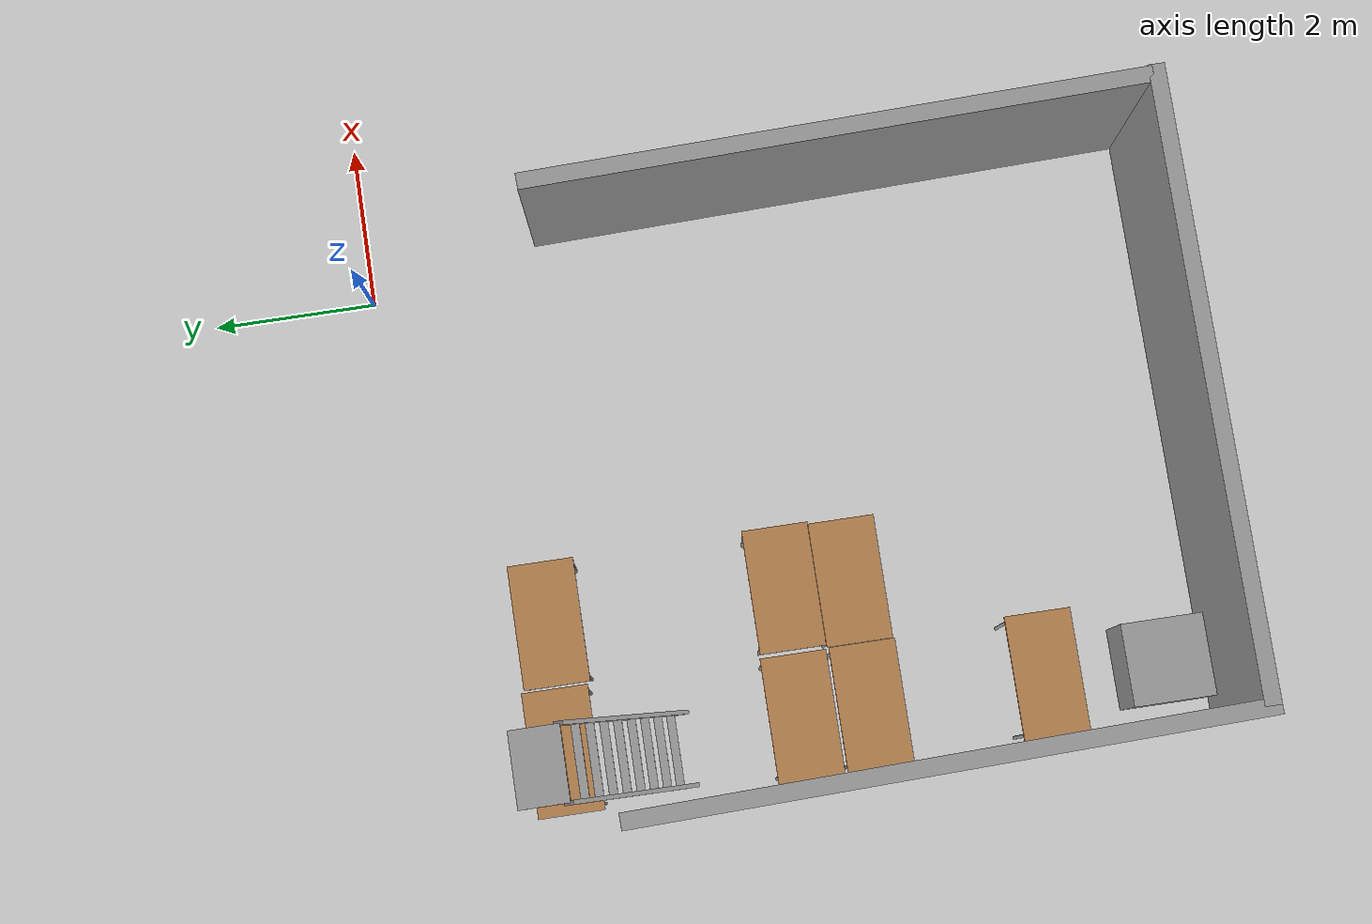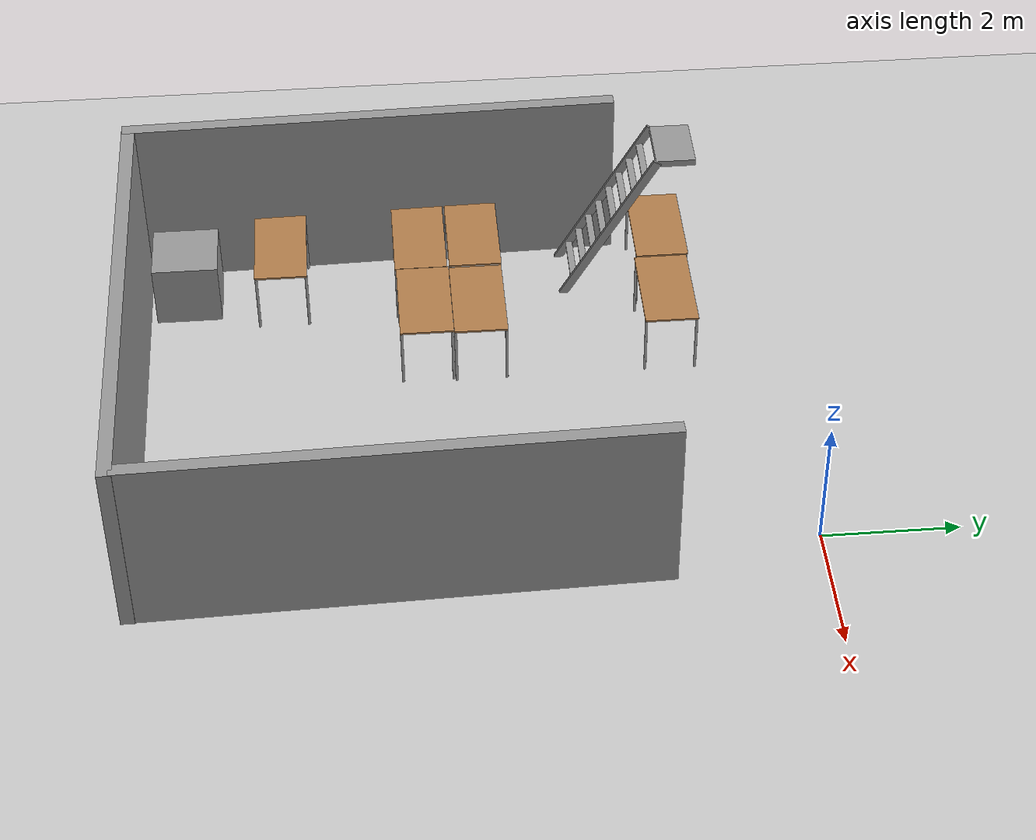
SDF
<sdf version="1.6">
 <world name="default">
  <model name="ground_plane">
   <static>1</static>
   <link name="link">
    <collision name="collision">
     <geometry><plane><normal>0 0 1</normal><size>100 100</size></plane></geometry>
     <surface>
      <contact><collide_bitmask>65535</collide_bitmask></contact>
      <friction><ode><mu>100</mu><mu2>50</mu2></ode></friction>
     </surface>
    </collision>
    <visual name="visual">
     <cast_shadows>0</cast_shadows>
     <geometry><plane><normal>0 0 1</normal><size>100 100</size></plane></geometry>
     <material>
      <script><uri>file://media/materials/scripts/gazebo.material</uri><name>Gazebo/Grey</name></script>
     </material>
    </visual>
   </link>
  </model>
  <model name="grey_wall_1">
   <static>1</static>
   <link name="link">
    <pose>0 0 1.4 0 -0 0</pose>
    <collision name="collision"><geometry><box><size>7.5 0.2 2.8</size></box></geometry></collision>
    <visual name="visual">
     <cast_shadows>0</cast_shadows>
     <geometry><box><size>7.5 0.2 2.8</size></box></geometry>
     <material>
      <script>
       <uri>model://grey_wall/materials/scripts</uri>
       <uri>model://grey_wall/materials/textures</uri>
       <name>vrc/grey_wall</name>
      </script>
     </material>
    </visual>
   </link>
   <pose>-6.7445 -6.00375 0 0 0 -1.546</pose>
  </model>
  <model name="grey_wall_2">
   <static>1</static>
   <link name="link">
    <pose>0 0 1.4 0 -0 0</pose>
    <collision name="collision"><geometry><box><size>7.5 0.2 2.8</size></box></geometry></collision>
    <visual name="visual">
     <cast_shadows>0</cast_shadows>
     <geometry><box><size>7.5 0.2 2.8</size></box></geometry>
     <material>
      <script>
       <uri>model://grey_wall/materials/scripts</uri>
       <uri>model://grey_wall/materials/textures</uri>
       <name>vrc/grey_wall</name>
      </script>
     </material>
    </visual>
   </link>
   <pose>-2.89104 -9.65366 0 0 -0 0</pose>
  </model>
  <model name="grey_wall_1_clone">
   <static>1</static>
   <link name="link">
    <pose>0 0 1.4 0 -0 0</pose>
    <collision name="collision"><geometry><box><size>7.5 0.2 2.8</size></box></geometry></collision>
    <visual name="visual">
     <cast_shadows>0</cast_shadows>
     <geometry><box><size>7.5 0.2 2.8</size></box></geometry>
     <material>
      <script>
       <uri>model://grey_wall/materials/scripts</uri>
       <uri>model://grey_wall/materials/textures</uri>
       <name>vrc/grey_wall</name>
      </script>
     </material>
    </visual>
   </link>
   <pose>0.654584 -5.8564 0 0 0 -1.546</pose>
  </model>
  <model name="table_0">
   <static>1</static>
   <link name="link">
    <collision name="surface">
     <pose>0 0 1 0 -0 0</pose>
     <geometry><box><size>1.5 0.8 0.03</size></box></geometry>
     <surface><friction><ode><mu>0.6</mu><mu2>0.6</mu2></ode></friction></surface>
    </collision>
    <visual name="visual1">
     <pose>0 0 1 0 -0 0</pose>
     <geometry><box><size>1.5 0.8 0.03</size></box></geometry>
     <material>
      <script><uri>file://media/materials/scripts/gazebo.material</uri><name>Gazebo/Wood</name></script>
     </material>
    </visual>
    <collision name="front_left_leg">
     <pose>0.68 0.38 0.5 0 -0 0</pose>
     <geometry><cylinder><radius>0.02</radius><length>1</length></cylinder></geometry>
    </collision>
    <visual name="front_left_leg">
     <pose>0.68 0.38 0.5 0 -0 0</pose>
     <geometry><cylinder><radius>0.02</radius><length>1</length></cylinder></geometry>
     <material>
      <script><uri>file://media/materials/scripts/gazebo.material</uri><name>Gazebo/Grey</name></script>
     </material>
    </visual>
    <collision name="front_right_leg">
     <pose>0.68 -0.38 0.5 0 -0 0</pose>
     <geometry><cylinder><radius>0.02</radius><length>1</length></cylinder></geometry>
    </collision>
    <visual name="front_right_leg">
     <pose>0.68 -0.38 0.5 0 -0 0</pose>
     <geometry><cylinder><radius>0.02</radius><length>1</length></cylinder></geometry>
     <material>
      <script><uri>file://media/materials/scripts/gazebo.material</uri><name>Gazebo/Grey</name></script>
     </material>
    </visual>
    <collision name="back_right_leg">
     <pose>-0.68 -0.38 0.5 0 -0 0</pose>
     <geometry><cylinder><radius>0.02</radius><length>1</length></cylinder></geometry>
    </collision>
    <visual name="back_right_leg">
     <pose>-0.68 -0.38 0.5 0 -0 0</pose>
     <geometry><cylinder><radius>0.02</radius><length>1</length></cylinder></geometry>
     <material>
      <script><uri>file://media/materials/scripts/gazebo.material</uri><name>Gazebo/Grey</name></script>
     </material>
    </visual>
    <collision name="back_left_leg">
     <pose>-0.68 0.38 0.5 0 -0 0</pose>
     <geometry><cylinder><radius>0.02</radius><length>1</length></cylinder></geometry>
    </collision>
    <visual name="back_left_leg">
     <pose>-0.68 0.38 0.5 0 -0 0</pose>
     <geometry><cylinder><radius>0.02</radius><length>1</length></cylinder></geometry>
     <material>
      <script><uri>file://media/materials/scripts/gazebo.material</uri><name>Gazebo/Grey</name></script>
     </material>
    </visual>
   </link>
   <pose>-5.8711 -7.48729 0 0 -0 0</pose>
  </model>
  <model name="table_1">
   <static>1</static>
   <link name="link">
    <collision name="surface">
     <pose>0 0 1 0 -0 0</pose>
     <geometry><box><size>1.5 0.8 0.03</size></box></geometry>
     <surface><friction><ode><mu>0.6</mu><mu2>0.6</mu2></ode></friction></surface>
    </collision>
    <visual name="visual1">
     <pose>0 0 1 0 -0 0</pose>
     <geometry><box><size>1.5 0.8 0.03</size></box></geometry>
     <material>
      <script><uri>file://media/materials/scripts/gazebo.material</uri><name>Gazebo/Wood</name></script>
     </material>
    </visual>
    <collision name="front_left_leg">
     <pose>0.68 0.38 0.5 0 -0 0</pose>
     <geometry><cylinder><radius>0.02</radius><length>1</length></cylinder></geometry>
    </collision>
    <visual name="front_left_leg">
     <pose>0.68 0.38 0.5 0 -0 0</pose>
     <geometry><cylinder><radius>0.02</radius><length>1</length></cylinder></geometry>
     <material>
      <script><uri>file://media/materials/scripts/gazebo.material</uri><name>Gazebo/Grey</name></script>
     </material>
    </visual>
    <collision name="front_right_leg">
     <pose>0.68 -0.38 0.5 0 -0 0</pose>
     <geometry><cylinder><radius>0.02</radius><length>1</length></cylinder></geometry>
    </collision>
    <visual name="front_right_leg">
     <pose>0.68 -0.38 0.5 0 -0 0</pose>
     <geometry><cylinder><radius>0.02</radius><length>1</length></cylinder></geometry>
     <material>
      <script><uri>file://media/materials/scripts/gazebo.material</uri><name>Gazebo/Grey</name></script>
     </material>
    </visual>
    <collision name="back_right_leg">
     <pose>-0.68 -0.38 0.5 0 -0 0</pose>
     <geometry><cylinder><radius>0.02</radius><length>1</length></cylinder></geometry>
    </collision>
    <visual name="back_right_leg">
     <pose>-0.68 -0.38 0.5 0 -0 0</pose>
     <geometry><cylinder><radius>0.02</radius><length>1</length></cylinder></geometry>
     <material>
      <script><uri>file://media/materials/scripts/gazebo.material</uri><name>Gazebo/Grey</name></script>
     </material>
    </visual>
    <collision name="back_left_leg">
     <pose>-0.68 0.38 0.5 0 -0 0</pose>
     <geometry><cylinder><radius>0.02</radius><length>1</length></cylinder></geometry>
    </collision>
    <visual name="back_left_leg">
     <pose>-0.68 0.38 0.5 0 -0 0</pose>
     <geometry><cylinder><radius>0.02</radius><length>1</length></cylinder></geometry>
     <material>
      <script><uri>file://media/materials/scripts/gazebo.material</uri><name>Gazebo/Grey</name></script>
     </material>
    </visual>
   </link>
   <pose>-5.92304 -5.35107 0 0 -0 0</pose>
  </model>
  <model name="table_2">
   <static>1</static>
   <link name="link">
    <collision name="surface">
     <pose>0 0 1 0 -0 0</pose>
     <geometry><box><size>1.5 0.8 0.03</size></box></geometry>
     <surface><friction><ode><mu>0.6</mu><mu2>0.6</mu2></ode></friction></surface>
    </collision>
    <visual name="visual1">
     <pose>0 0 1 0 -0 0</pose>
     <geometry><box><size>1.5 0.8 0.03</size></box></geometry>
     <material>
      <script><uri>file://media/materials/scripts/gazebo.material</uri><name>Gazebo/Wood</name></script>
     </material>
    </visual>
    <collision name="front_left_leg">
     <pose>0.68 0.38 0.5 0 -0 0</pose>
     <geometry><cylinder><radius>0.02</radius><length>1</length></cylinder></geometry>
    </collision>
    <visual name="front_left_leg">
     <pose>0.68 0.38 0.5 0 -0 0</pose>
     <geometry><cylinder><radius>0.02</radius><length>1</length></cylinder></geometry>
     <material>
      <script><uri>file://media/materials/scripts/gazebo.material</uri><name>Gazebo/Grey</name></script>
     </material>
    </visual>
    <collision name="front_right_leg">
     <pose>0.68 -0.38 0.5 0 -0 0</pose>
     <geometry><cylinder><radius>0.02</radius><length>1</length></cylinder></geometry>
    </collision>
    <visual name="front_right_leg">
     <pose>0.68 -0.38 0.5 0 -0 0</pose>
     <geometry><cylinder><radius>0.02</radius><length>1</length></cylinder></geometry>
     <material>
      <script><uri>file://media/materials/scripts/gazebo.material</uri><name>Gazebo/Grey</name></script>
     </material>
    </visual>
    <collision name="back_right_leg">
     <pose>-0.68 -0.38 0.5 0 -0 0</pose>
     <geometry><cylinder><radius>0.02</radius><length>1</length></cylinder></geometry>
    </collision>
    <visual name="back_right_leg">
     <pose>-0.68 -0.38 0.5 0 -0 0</pose>
     <geometry><cylinder><radius>0.02</radius><length>1</length></cylinder></geometry>
     <material>
      <script><uri>file://media/materials/scripts/gazebo.material</uri><name>Gazebo/Grey</name></script>
     </material>
    </visual>
    <collision name="back_left_leg">
     <pose>-0.68 0.38 0.5 0 -0 0</pose>
     <geometry><cylinder><radius>0.02</radius><length>1</length></cylinder></geometry>
    </collision>
    <visual name="back_left_leg">
     <pose>-0.68 0.38 0.5 0 -0 0</pose>
     <geometry><cylinder><radius>0.02</radius><length>1</length></cylinder></geometry>
     <material>
      <script><uri>file://media/materials/scripts/gazebo.material</uri><name>Gazebo/Grey</name></script>
     </material>
    </visual>
   </link>
   <pose>-5.93597 -4.5163 0 0 -0 0</pose>
  </model>
  <model name="table_3">
   <static>1</static>
   <link name="link">
    <collision name="surface">
     <pose>0 0 1 0 -0 0</pose>
     <geometry><box><size>1.5 0.8 0.03</size></box></geometry>
     <surface><friction><ode><mu>0.6</mu><mu2>0.6</mu2></ode></friction></surface>
    </collision>
    <visual name="visual1">
     <pose>0 0 1 0 -0 0</pose>
     <geometry><box><size>1.5 0.8 0.03</size></box></geometry>
     <material>
      <script><uri>file://media/materials/scripts/gazebo.material</uri><name>Gazebo/Wood</name></script>
     </material>
    </visual>
    <collision name="front_left_leg">
     <pose>0.68 0.38 0.5 0 -0 0</pose>
     <geometry><cylinder><radius>0.02</radius><length>1</length></cylinder></geometry>
    </collision>
    <visual name="front_left_leg">
     <pose>0.68 0.38 0.5 0 -0 0</pose>
     <geometry><cylinder><radius>0.02</radius><length>1</length></cylinder></geometry>
     <material>
      <script><uri>file://media/materials/scripts/gazebo.material</uri><name>Gazebo/Grey</name></script>
     </material>
    </visual>
    <collision name="front_right_leg">
     <pose>0.68 -0.38 0.5 0 -0 0</pose>
     <geometry><cylinder><radius>0.02</radius><length>1</length></cylinder></geometry>
    </collision>
    <visual name="front_right_leg">
     <pose>0.68 -0.38 0.5 0 -0 0</pose>
     <geometry><cylinder><radius>0.02</radius><length>1</length></cylinder></geometry>
     <material>
      <script><uri>file://media/materials/scripts/gazebo.material</uri><name>Gazebo/Grey</name></script>
     </material>
    </visual>
    <collision name="back_right_leg">
     <pose>-0.68 -0.38 0.5 0 -0 0</pose>
     <geometry><cylinder><radius>0.02</radius><length>1</length></cylinder></geometry>
    </collision>
    <visual name="back_right_leg">
     <pose>-0.68 -0.38 0.5 0 -0 0</pose>
     <geometry><cylinder><radius>0.02</radius><length>1</length></cylinder></geometry>
     <material>
      <script><uri>file://media/materials/scripts/gazebo.material</uri><name>Gazebo/Grey</name></script>
     </material>
    </visual>
    <collision name="back_left_leg">
     <pose>-0.68 0.38 0.5 0 -0 0</pose>
     <geometry><cylinder><radius>0.02</radius><length>1</length></cylinder></geometry>
    </collision>
    <visual name="back_left_leg">
     <pose>-0.68 0.38 0.5 0 -0 0</pose>
     <geometry><cylinder><radius>0.02</radius><length>1</length></cylinder></geometry>
     <material>
      <script><uri>file://media/materials/scripts/gazebo.material</uri><name>Gazebo/Grey</name></script>
     </material>
    </visual>
   </link>
   <pose>-4.41713 -5.33099 0 0 -0 0</pose>
  </model>
  <model name="table_4">
   <static>1</static>
   <link name="link">
    <collision name="surface">
     <pose>0 0 1 0 -0 0</pose>
     <geometry><box><size>1.5 0.8 0.03</size></box></geometry>
     <surface><friction><ode><mu>0.6</mu><mu2>0.6</mu2></ode></friction></surface>
    </collision>
    <visual name="visual1">
     <pose>0 0 1 0 -0 0</pose>
     <geometry><box><size>1.5 0.8 0.03</size></box></geometry>
     <material>
      <script><uri>file://media/materials/scripts/gazebo.material</uri><name>Gazebo/Wood</name></script>
     </material>
    </visual>
    <collision name="front_left_leg">
     <pose>0.68 0.38 0.5 0 -0 0</pose>
     <geometry><cylinder><radius>0.02</radius><length>1</length></cylinder></geometry>
    </collision>
    <visual name="front_left_leg">
     <pose>0.68 0.38 0.5 0 -0 0</pose>
     <geometry><cylinder><radius>0.02</radius><length>1</length></cylinder></geometry>
     <material>
      <script><uri>file://media/materials/scripts/gazebo.material</uri><name>Gazebo/Grey</name></script>
     </material>
    </visual>
    <collision name="front_right_leg">
     <pose>0.68 -0.38 0.5 0 -0 0</pose>
     <geometry><cylinder><radius>0.02</radius><length>1</length></cylinder></geometry>
    </collision>
    <visual name="front_right_leg">
     <pose>0.68 -0.38 0.5 0 -0 0</pose>
     <geometry><cylinder><radius>0.02</radius><length>1</length></cylinder></geometry>
     <material>
      <script><uri>file://media/materials/scripts/gazebo.material</uri><name>Gazebo/Grey</name></script>
     </material>
    </visual>
    <collision name="back_right_leg">
     <pose>-0.68 -0.38 0.5 0 -0 0</pose>
     <geometry><cylinder><radius>0.02</radius><length>1</length></cylinder></geometry>
    </collision>
    <visual name="back_right_leg">
     <pose>-0.68 -0.38 0.5 0 -0 0</pose>
     <geometry><cylinder><radius>0.02</radius><length>1</length></cylinder></geometry>
     <material>
      <script><uri>file://media/materials/scripts/gazebo.material</uri><name>Gazebo/Grey</name></script>
     </material>
    </visual>
    <collision name="back_left_leg">
     <pose>-0.68 0.38 0.5 0 -0 0</pose>
     <geometry><cylinder><radius>0.02</radius><length>1</length></cylinder></geometry>
    </collision>
    <visual name="back_left_leg">
     <pose>-0.68 0.38 0.5 0 -0 0</pose>
     <geometry><cylinder><radius>0.02</radius><length>1</length></cylinder></geometry>
     <material>
      <script><uri>file://media/materials/scripts/gazebo.material</uri><name>Gazebo/Grey</name></script>
     </material>
    </visual>
   </link>
   <pose>-4.38813 -4.52745 0 0 -0 0</pose>
  </model>
  <model name="table_7">
   <static>1</static>
   <link name="link">
    <collision name="surface">
     <pose>0 0 1 0 -0 0</pose>
     <geometry><box><size>1.5 0.8 0.03</size></box></geometry>
     <surface><friction><ode><mu>0.6</mu><mu2>0.6</mu2></ode></friction></surface>
    </collision>
    <visual name="visual1">
     <pose>0 0 1 0 -0 0</pose>
     <geometry><box><size>1.5 0.8 0.03</size></box></geometry>
     <material>
      <script><uri>file://media/materials/scripts/gazebo.material</uri><name>Gazebo/Wood</name></script>
     </material>
    </visual>
    <collision name="front_left_leg">
     <pose>0.68 0.38 0.5 0 -0 0</pose>
     <geometry><cylinder><radius>0.02</radius><length>1</length></cylinder></geometry>
    </collision>
    <visual name="front_left_leg">
     <pose>0.68 0.38 0.5 0 -0 0</pose>
     <geometry><cylinder><radius>0.02</radius><length>1</length></cylinder></geometry>
     <material>
      <script><uri>file://media/materials/scripts/gazebo.material</uri><name>Gazebo/Grey</name></script>
     </material>
    </visual>
    <collision name="front_right_leg">
     <pose>0.68 -0.38 0.5 0 -0 0</pose>
     <geometry><cylinder><radius>0.02</radius><length>1</length></cylinder></geometry>
    </collision>
    <visual name="front_right_leg">
     <pose>0.68 -0.38 0.5 0 -0 0</pose>
     <geometry><cylinder><radius>0.02</radius><length>1</length></cylinder></geometry>
     <material>
      <script><uri>file://media/materials/scripts/gazebo.material</uri><name>Gazebo/Grey</name></script>
     </material>
    </visual>
    <collision name="back_right_leg">
     <pose>-0.68 -0.38 0.5 0 -0 0</pose>
     <geometry><cylinder><radius>0.02</radius><length>1</length></cylinder></geometry>
    </collision>
    <visual name="back_right_leg">
     <pose>-0.68 -0.38 0.5 0 -0 0</pose>
     <geometry><cylinder><radius>0.02</radius><length>1</length></cylinder></geometry>
     <material>
      <script><uri>file://media/materials/scripts/gazebo.material</uri><name>Gazebo/Grey</name></script>
     </material>
    </visual>
    <collision name="back_left_leg">
     <pose>-0.68 0.38 0.5 0 -0 0</pose>
     <geometry><cylinder><radius>0.02</radius><length>1</length></cylinder></geometry>
    </collision>
    <visual name="back_left_leg">
     <pose>-0.68 0.38 0.5 0 -0 0</pose>
     <geometry><cylinder><radius>0.02</radius><length>1</length></cylinder></geometry>
     <material>
      <script><uri>file://media/materials/scripts/gazebo.material</uri><name>Gazebo/Grey</name></script>
     </material>
    </visual>
   </link>
   <pose>-5.9259 -1.63767 0 0 -0 0</pose>
  </model>
  <model name="table_9">
   <static>1</static>
   <link name="link">
    <collision name="surface">
     <pose>0 0 1 0 -0 0</pose>
     <geometry><box><size>1.5 0.8 0.03</size></box></geometry>
     <surface><friction><ode><mu>0.6</mu><mu2>0.6</mu2></ode></friction></surface>
    </collision>
    <visual name="visual1">
     <pose>0 0 1 0 -0 0</pose>
     <geometry><box><size>1.5 0.8 0.03</size></box></geometry>
     <material>
      <script><uri>file://media/materials/scripts/gazebo.material</uri><name>Gazebo/Wood</name></script>
     </material>
    </visual>
    <collision name="front_left_leg">
     <pose>0.68 0.38 0.5 0 -0 0</pose>
     <geometry><cylinder><radius>0.02</radius><length>1</length></cylinder></geometry>
    </collision>
    <visual name="front_left_leg">
     <pose>0.68 0.38 0.5 0 -0 0</pose>
     <geometry><cylinder><radius>0.02</radius><length>1</length></cylinder></geometry>
     <material>
      <script><uri>file://media/materials/scripts/gazebo.material</uri><name>Gazebo/Grey</name></script>
     </material>
    </visual>
    <collision name="front_right_leg">
     <pose>0.68 -0.38 0.5 0 -0 0</pose>
     <geometry><cylinder><radius>0.02</radius><length>1</length></cylinder></geometry>
    </collision>
    <visual name="front_right_leg">
     <pose>0.68 -0.38 0.5 0 -0 0</pose>
     <geometry><cylinder><radius>0.02</radius><length>1</length></cylinder></geometry>
     <material>
      <script><uri>file://media/materials/scripts/gazebo.material</uri><name>Gazebo/Grey</name></script>
     </material>
    </visual>
    <collision name="back_right_leg">
     <pose>-0.68 -0.38 0.5 0 -0 0</pose>
     <geometry><cylinder><radius>0.02</radius><length>1</length></cylinder></geometry>
    </collision>
    <visual name="back_right_leg">
     <pose>-0.68 -0.38 0.5 0 -0 0</pose>
     <geometry><cylinder><radius>0.02</radius><length>1</length></cylinder></geometry>
     <material>
      <script><uri>file://media/materials/scripts/gazebo.material</uri><name>Gazebo/Grey</name></script>
     </material>
    </visual>
    <collision name="back_left_leg">
     <pose>-0.68 0.38 0.5 0 -0 0</pose>
     <geometry><cylinder><radius>0.02</radius><length>1</length></cylinder></geometry>
    </collision>
    <visual name="back_left_leg">
     <pose>-0.68 0.38 0.5 0 -0 0</pose>
     <geometry><cylinder><radius>0.02</radius><length>1</length></cylinder></geometry>
     <material>
      <script><uri>file://media/materials/scripts/gazebo.material</uri><name>Gazebo/Grey</name></script>
     </material>
    </visual>
   </link>
   <pose>-4.3962 -1.67397 0 0 -0 0</pose>
  </model>
  <model name="ladder_60deg_0rails">
   <static>1</static>
   <link name="step0">
    <pose>0 0.15396 0.266667 0 -0 0</pose>
    <inertial>
     <mass>9.75482</mass>
     <inertia>
      <ixx>0.00957124</ixx>
      <iyy>0.65963</iyy>
      <izz>0.666842</izz>
      <ixy>0</ixy>
      <ixz>0</ixz>
      <iyz>0</iyz>
     </inertia>
    </inertial>
    <collision name="collision"><geometry><box><size>0.9 0.1016 0.0381</size></box></geometry></collision>
    <visual name="visual">
     <geometry><box><size>0.9 0.1016 0.0381</size></box></geometry>
     <material>
      <script><uri>file://media/materials/scripts/gazebo.material</uri><name>Gazebo/Grey</name></script>
     </material>
    </visual>
   </link>
   <link name="step1">
    <pose>0 0.30792 0.533333 0 -0 0</pose>
    <inertial>
     <mass>9.75482</mass>
     <inertia>
      <ixx>0.00957124</ixx>
      <iyy>0.65963</iyy>
      <izz>0.666842</izz>
      <ixy>0</ixy>
      <ixz>0</ixz>
      <iyz>0</iyz>
     </inertia>
    </inertial>
    <collision name="collision"><geometry><box><size>0.9 0.1016 0.0381</size></box></geometry></collision>
    <visual name="visual">
     <geometry><box><size>0.9 0.1016 0.0381</size></box></geometry>
     <material>
      <script><uri>file://media/materials/scripts/gazebo.material</uri><name>Gazebo/Grey</name></script>
     </material>
    </visual>
   </link>
   <link name="step2">
    <pose>0 0.46188 0.8 0 -0 0</pose>
    <inertial>
     <mass>9.75482</mass>
     <inertia>
      <ixx>0.00957124</ixx>
      <iyy>0.65963</iyy>
      <izz>0.666842</izz>
      <ixy>0</ixy>
      <ixz>0</ixz>
      <iyz>0</iyz>
     </inertia>
    </inertial>
    <collision name="collision"><geometry><box><size>0.9 0.1016 0.0381</size></box></geometry></collision>
    <visual name="visual">
     <geometry><box><size>0.9 0.1016 0.0381</size></box></geometry>
     <material>
      <script><uri>file://media/materials/scripts/gazebo.material</uri><name>Gazebo/Grey</name></script>
     </material>
    </visual>
   </link>
   <link name="step3">
    <pose>0 0.61584 1.06667 0 -0 0</pose>
    <inertial>
     <mass>9.75482</mass>
     <inertia>
      <ixx>0.00957124</ixx>
      <iyy>0.65963</iyy>
      <izz>0.666842</izz>
      <ixy>0</ixy>
      <ixz>0</ixz>
      <iyz>0</iyz>
     </inertia>
    </inertial>
    <collision name="collision"><geometry><box><size>0.9 0.1016 0.0381</size></box></geometry></collision>
    <visual name="visual">
     <geometry><box><size>0.9 0.1016 0.0381</size></box></geometry>
     <material>
      <script><uri>file://media/materials/scripts/gazebo.material</uri><name>Gazebo/Grey</name></script>
     </material>
    </visual>
   </link>
   <link name="step4">
    <pose>0 0.7698 1.33333 0 -0 0</pose>
    <inertial>
     <mass>9.75482</mass>
     <inertia>
      <ixx>0.00957124</ixx>
      <iyy>0.65963</iyy>
      <izz>0.666842</izz>
      <ixy>0</ixy>
      <ixz>0</ixz>
      <iyz>0</iyz>
     </inertia>
    </inertial>
    <collision name="collision"><geometry><box><size>0.9 0.1016 0.0381</size></box></geometry></collision>
    <visual name="visual">
     <geometry><box><size>0.9 0.1016 0.0381</size></box></geometry>
     <material>
      <script><uri>file://media/materials/scripts/gazebo.material</uri><name>Gazebo/Grey</name></script>
     </material>
    </visual>
   </link>
   <link name="step5">
    <pose>0 0.92376 1.6 0 -0 0</pose>
    <inertial>
     <mass>9.75482</mass>
     <inertia>
      <ixx>0.00957124</ixx>
      <iyy>0.65963</iyy>
      <izz>0.666842</izz>
      <ixy>0</ixy>
      <ixz>0</ixz>
      <iyz>0</iyz>
     </inertia>
    </inertial>
    <collision name="collision"><geometry><box><size>0.9 0.1016 0.0381</size></box></geometry></collision>
    <visual name="visual">
     <geometry><box><size>0.9 0.1016 0.0381</size></box></geometry>
     <material>
      <script><uri>file://media/materials/scripts/gazebo.material</uri><name>Gazebo/Grey</name></script>
     </material>
    </visual>
   </link>
   <link name="step6">
    <pose>0 1.07772 1.86667 0 -0 0</pose>
    <inertial>
     <mass>9.75482</mass>
     <inertia>
      <ixx>0.00957124</ixx>
      <iyy>0.65963</iyy>
      <izz>0.666842</izz>
      <ixy>0</ixy>
      <ixz>0</ixz>
      <iyz>0</iyz>
     </inertia>
    </inertial>
    <collision name="collision"><geometry><box><size>0.9 0.1016 0.0381</size></box></geometry></collision>
    <visual name="visual">
     <geometry><box><size>0.9 0.1016 0.0381</size></box></geometry>
     <material>
      <script><uri>file://media/materials/scripts/gazebo.material</uri><name>Gazebo/Grey</name></script>
     </material>
    </visual>
   </link>
   <link name="step7">
    <pose>0 1.23168 2.13333 0 -0 0</pose>
    <inertial>
     <mass>9.75482</mass>
     <inertia>
      <ixx>0.00957124</ixx>
      <iyy>0.65963</iyy>
      <izz>0.666842</izz>
      <ixy>0</ixy>
      <ixz>0</ixz>
      <iyz>0</iyz>
     </inertia>
    </inertial>
    <collision name="collision"><geometry><box><size>0.9 0.1016 0.0381</size></box></geometry></collision>
    <visual name="visual">
     <geometry><box><size>0.9 0.1016 0.0381</size></box></geometry>
     <material>
      <script><uri>file://media/materials/scripts/gazebo.material</uri><name>Gazebo/Grey</name></script>
     </material>
    </visual>
   </link>
   <link name="landing">
    <pose>0 1.68564 2.4 0 -0 0</pose>
    <inertial>
     <mass>57.6072</mass>
     <inertia><ixx>1.73518</ixx><iyy>3.89545</iyy><izz>5.6167</izz><ixy>0</ixy><ixz>0</ixz><iyz>0</iyz></inertia>
    </inertial>
    <collision name="collision"><geometry><box><size>0.9 0.6 0.1016</size></box></geometry></collision>
    <visual name="visual">
     <geometry><box><size>0.9 0.6 0.1016</size></box></geometry>
     <material>
      <script><uri>file://media/materials/scripts/gazebo.material</uri><name>Gazebo/Grey</name></script>
     </material>
    </visual>
   </link>
   <link name="left_side_wall">
    <pose>-0.45 0.69282 1.2 1.0472 -0 0</pose>
    <collision name="collision"><geometry><box><size>0.0508 2.85128 0.13</size></box></geometry></collision>
    <visual name="visual">
     <geometry><box><size>0.0508 2.85128 0.13</size></box></geometry>
     <material>
      <script><uri>file://media/materials/scripts/gazebo.material</uri><name>Gazebo/Grey</name></script>
     </material>
    </visual>
   </link>
   <link name="right_side_wall">
    <pose>0.45 0.69282 1.2 1.0472 -0 0</pose>
    <collision name="collision"><geometry><box><size>0.0508 2.85128 0.13</size></box></geometry></collision>
    <visual name="visual">
     <geometry><box><size>0.0508 2.85128 0.13</size></box></geometry>
     <material>
      <script><uri>file://media/materials/scripts/gazebo.material</uri><name>Gazebo/Grey</name></script>
     </material>
    </visual>
   </link>
   <pose>-6.09433 -3.10726 0 0 -0 0</pose>
  </model>
  <model name="unit_box">
   <pose>-5.91282 -8.95282 0.499995 0 1e-05 1.2e-05</pose>
   <link name="link">
    <inertial>
     <mass>1</mass>
     <inertia>
      <ixx>0.166667</ixx>
      <ixy>0</ixy>
      <ixz>0</ixz>
      <iyy>0.166667</iyy>
      <iyz>0</iyz>
      <izz>0.166667</izz>
     </inertia>
    </inertial>
    <collision name="collision"><geometry><box><size>1 0.999999 1</size></box></geometry></collision>
    <visual name="visual">
     <geometry><box><size>1 0.999999 1</size></box></geometry>
     <material>
      <script><name>Gazebo/Grey</name><uri>file://media/materials/scripts/gazebo.material</uri></script>
     </material>
    </visual>
   </link>
  </model>
 </world>
</sdf>
